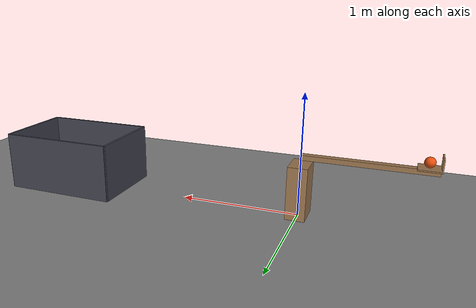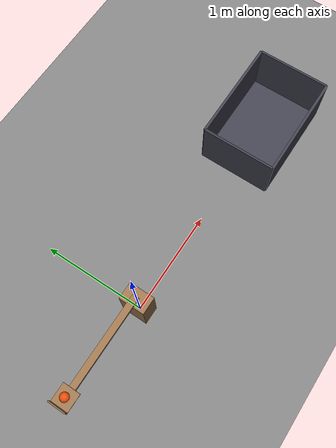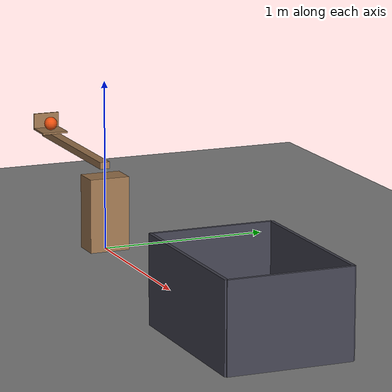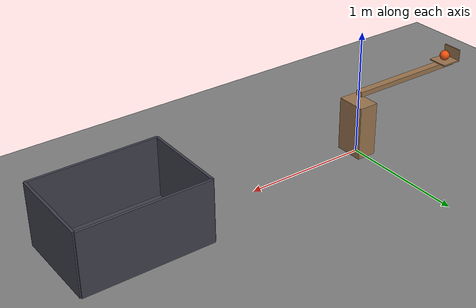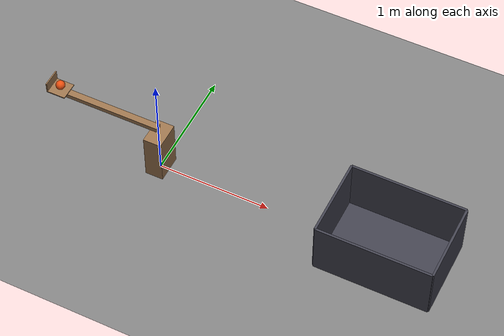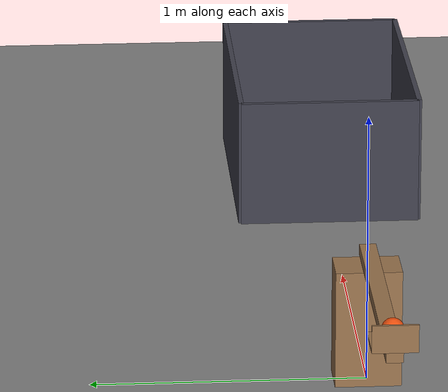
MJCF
<mujoco model="spring_catapult_into_bucket">
  <compiler angle="radian"/>
  <option timestep="0.002"/>
  <worldbody>
    <geom name="floor" type="plane" size="7 7 0.1" friction="0.8 0.005 0.002"/>
    <geom name="catapult_stand" type="box" pos="0 0 0.22" size="0.08 0.12 0.22" friction="0.02 0.001 0.001" solref="0.01 1" rgba="0.6 0.45 0.3 1"/>
    <body name="catapult" pos="0 0 0.5">
      <joint name="catapult_hinge" type="hinge" pos="0 0 0" axis="0 1 0" limited="true" range="0 0.785398" stiffness="3" springref="1.5708" damping="0.01" armature="0.01"/>
      <geom name="catapult_arm" type="box" pos="-0.5 0 0" size="0.5 0.03 0.02" mass="0.1" friction="0.02 0.001 0.001" solref="0.01 1" rgba="0.6 0.45 0.3 1"/>
      <geom name="catapult_scoop_base" type="box" pos="-0.92 0 0.025" size="0.08 0.08 0.005" mass="0.02" friction="0.02 0.001 0.001" solref="0.01 1" rgba="0.6 0.45 0.3 1"/>
      <geom name="catapult_scoop_back" type="box" pos="-1.005 0 0.07" size="0.005 0.08 0.05" mass="0.01" friction="0.02 0.001 0.001" solref="0.01 1" rgba="0.6 0.45 0.3 1"/>
    </body>
    <body name="ball" pos="-0.92 0 0.57">
      <freejoint/>
      <geom name="ball" type="sphere" pos="0 0 0" size="0.04" mass="0.1" condim="6" friction="0.02 0.005 0.002" solref="0.01 1" rgba="0.9 0.3 0.05 1"/>
    </body>
    <body name="bucket">
      <geom name="bucket_base" type="box" pos="2.08 0 0.01" size="0.5 0.35 0.01" friction="1 0.03 0.015" solref="0.01 1" rgba="0.25 0.25 0.3 1"/>
      <geom name="bucket_near_wall" type="box" pos="1.58 0 0.25" size="0.01 0.35 0.25" friction="1 0.03 0.015" solref="0.01 1" rgba="0.25 0.25 0.3 1"/>
      <geom name="bucket_far_wall" type="box" pos="2.58 0 0.25" size="0.01 0.35 0.25" friction="1 0.03 0.015" solref="0.01 1" rgba="0.25 0.25 0.3 1"/>
      <geom name="bucket_left_wall" type="box" pos="2.08 0.35 0.25" size="0.5 0.01 0.25" friction="1 0.03 0.015" solref="0.01 1" rgba="0.25 0.25 0.3 1"/>
      <geom name="bucket_right_wall" type="box" pos="2.08 -0.35 0.25" size="0.5 0.01 0.25" friction="1 0.03 0.015" solref="0.01 1" rgba="0.25 0.25 0.3 1"/>
    </body>
  </worldbody>
  <keyframe>
    <key name="start" qpos="0 -0.92 0 0.57 1 0 0 0" qvel="0 0 0 0 0 0 0"/>
  </keyframe>
</mujoco>
